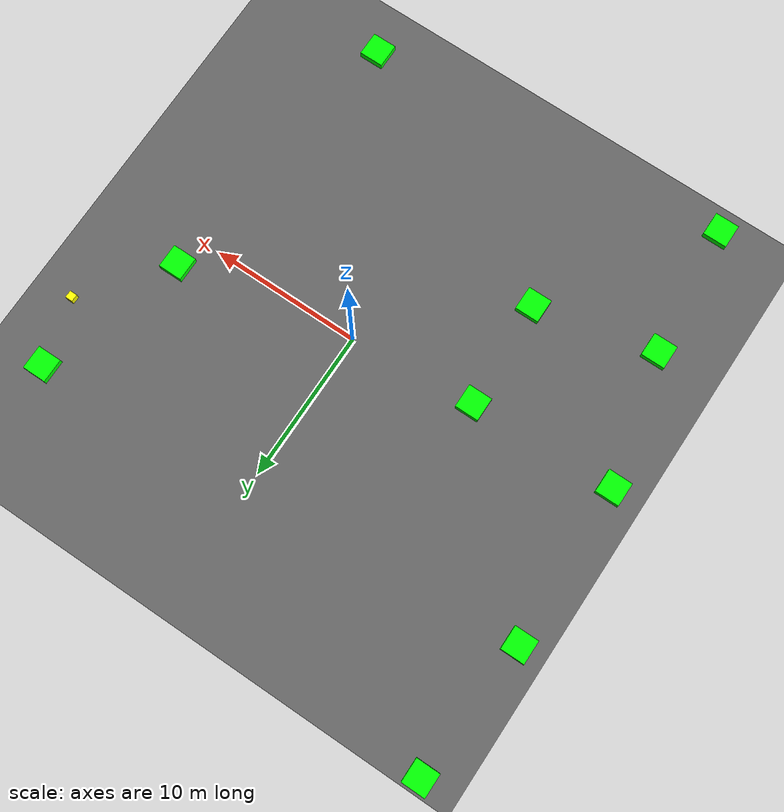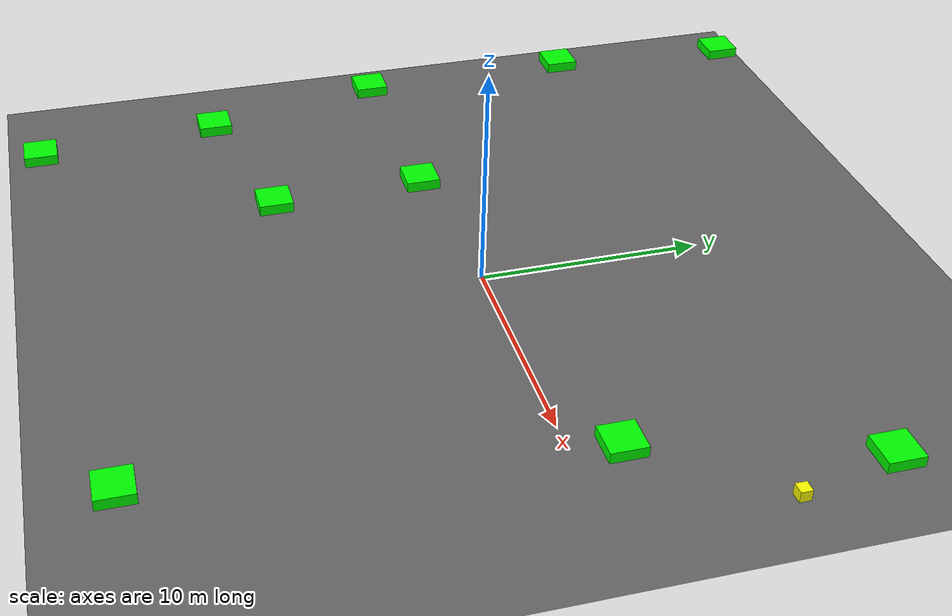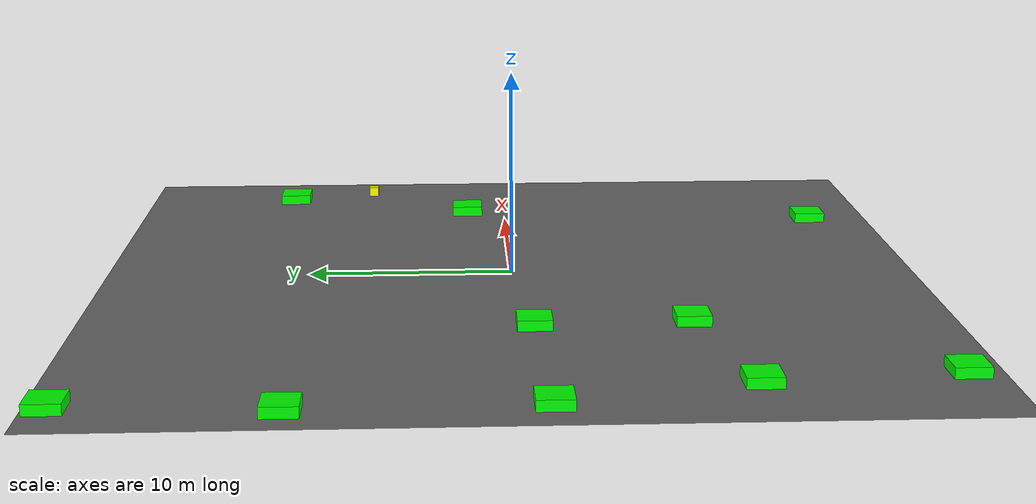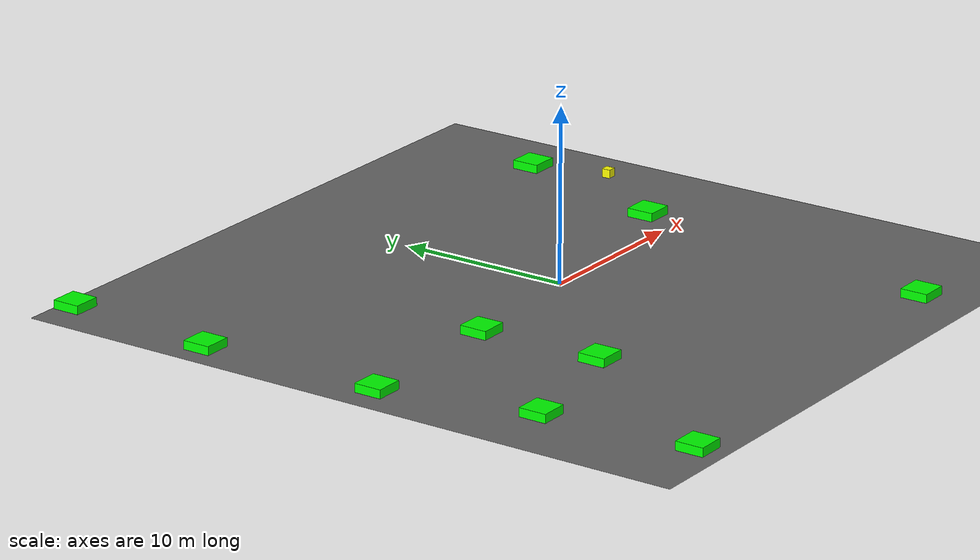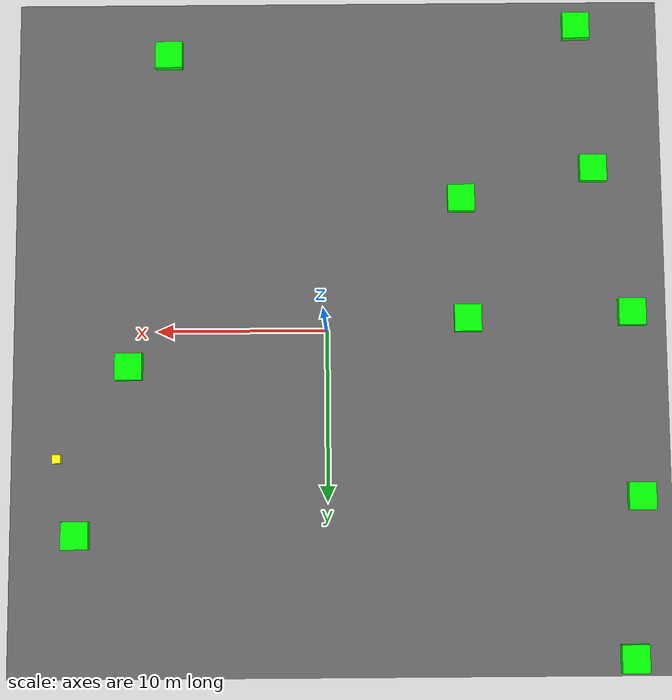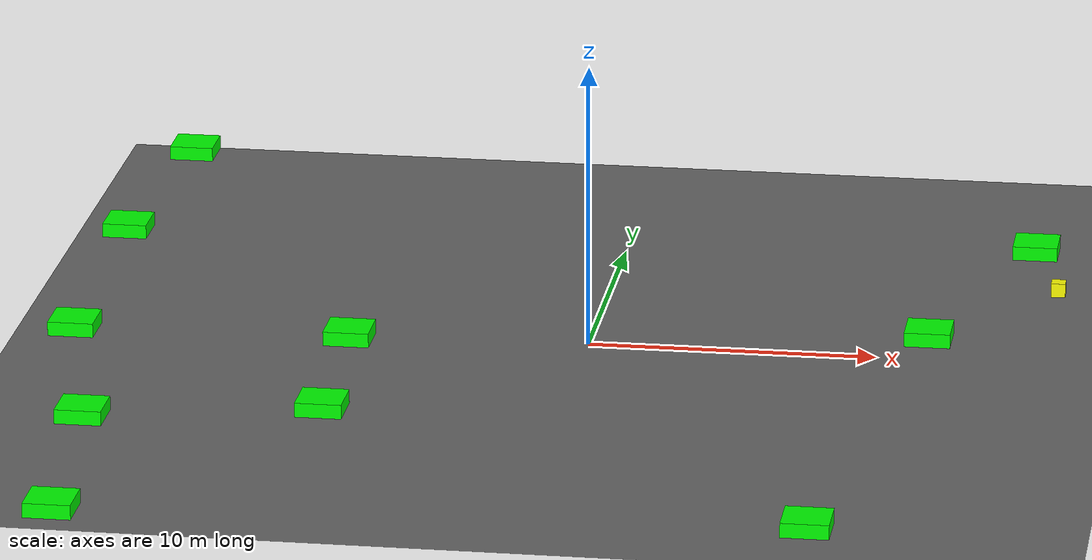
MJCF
<mujoco model="baseline_lvl5_obs10_seed4002">
    <compiler angle="degree" coordinate="local" inertiafromgeom="true"/>
    <option integrator="RK4" timestep="0.01"/>

    <asset>
        <texture builtin="gradient" height="100" rgb1="0.6 0.8 1" rgb2="0 0 0" type="skybox" width="100"/>
        <texture name="floor_texture" type="2d" builtin="checker" width="100" height="100" rgb1="0 0 0" rgb2="0.8 0.8 0.8"/>
        <material name="MatPlane" reflectance="0.5" shininess="1" specular="1" texrepeat="10 10" texture="floor_texture"/>
    </asset>

    <!-- Excluding the contact between the agent and the goal, and the agent and the floor -->
    <contact>
        <exclude body1="agent" body2="goal"/>
        <exclude body1 = "agent" body2 = "floor"/>
    </contact>

    <extension>
        <plugin plugin = "mujoco.pid">
            <instance name = "pid1">
                <config key="kp" value="2"/>
                <config key="ki" value="0"/>
                <config key="kd" value="55"/>
            </instance>
        </plugin>
    </extension>

    <worldbody>
        <light cutoff="100" diffuse="1 1 1" dir="-0 0 -1.3" directional="true" exponent="1" pos="0 0 1.3" specular=".1 .1 .1"/>
        <body name="floor" pos="0 0 0">
            <geom name="floor_geom" type="plane" size="20 20 0.1" material="MatPlane"/>
        </body>

        <!-- Goal -->
        <body name="goal" pos="12.000 -12.000 0">
            <geom name="goal_geom" type="plane" size="0.5 0.5 1" pos="0 0 0" rgba="1 0 0 1"/>
        </body>

        <!-- Agent -->
        <body name="agent" pos="15.753 7.423 0.25">
            <joint name="j1" type="slide" axis ="1 0 0 "/>
            <joint name="j2" type="slide" axis ="0 1 0 "/>
            <geom name="agent_geom" type="box" size="0.25 0.25 0.250" rgba="1 1 0 1"/>
        </body>

    <body name="obstacle1" pos="14.633 11.822 0.250">
      <geom name="obstacle1_geom" type="box"
            size="0.800 0.800 0.250"
            rgba="0 1 0 1"/>
    </body>
    <body name="obstacle2" pos="-18.219 9.769 0.250">
      <geom name="obstacle2_geom" type="box"
            size="0.800 0.800 0.250"
            rgba="0 1 0 1"/>
    </body>
    <body name="obstacle3" pos="9.429 -16.751 0.250">
      <geom name="obstacle3_geom" type="box"
            size="0.800 0.800 0.250"
            rgba="0 1 0 1"/>
    </body>
    <body name="obstacle4" pos="-8.293 -0.690 0.250">
      <geom name="obstacle4_geom" type="box"
            size="0.800 0.800 0.250"
            rgba="0 1 0 1"/>
    </body>
    <body name="obstacle5" pos="-17.538 19.004 0.250">
      <geom name="obstacle5_geom" type="box"
            size="0.800 0.800 0.250"
            rgba="0 1 0 1"/>
    </body>
    <body name="obstacle6" pos="-7.998 -7.877 0.250">
      <geom name="obstacle6_geom" type="box"
            size="0.800 0.800 0.250"
            rgba="0 1 0 1"/>
    </body>
    <body name="obstacle7" pos="-17.953 -0.994 0.250">
      <geom name="obstacle7_geom" type="box"
            size="0.800 0.800 0.250"
            rgba="0 1 0 1"/>
    </body>
    <body name="obstacle8" pos="11.645 2.050 0.250">
      <geom name="obstacle8_geom" type="box"
            size="0.800 0.800 0.250"
            rgba="0 1 0 1"/>
    </body>
    <body name="obstacle9" pos="-15.070 -18.417 0.250">
      <geom name="obstacle9_geom" type="box"
            size="0.800 0.800 0.250"
            rgba="0 1 0 1"/>
    </body>
    <body name="obstacle10" pos="-15.881 -9.650 0.250">
      <geom name="obstacle10_geom" type="box"
            size="0.800 0.800 0.250"
            rgba="0 1 0 1"/>
    </body>
    </worldbody>

    <actuator>
        <plugin joint="j1" plugin="mujoco.pid" instance="pid1" />
        <plugin joint="j2" plugin="mujoco.pid" instance="pid1"/>
    </actuator>

  <sensor>
    <distance name="dist1" geom1="agent_geom" geom2="obstacle1_geom" cutoff="1.5"/>
    <distance name="dist2" geom1="agent_geom" geom2="obstacle2_geom" cutoff="1.5"/>
    <distance name="dist3" geom1="agent_geom" geom2="obstacle3_geom" cutoff="1.5"/>
    <distance name="dist4" geom1="agent_geom" geom2="obstacle4_geom" cutoff="1.5"/>
    <distance name="dist5" geom1="agent_geom" geom2="obstacle5_geom" cutoff="1.5"/>
    <distance name="dist6" geom1="agent_geom" geom2="obstacle6_geom" cutoff="1.5"/>
    <distance name="dist7" geom1="agent_geom" geom2="obstacle7_geom" cutoff="1.5"/>
    <distance name="dist8" geom1="agent_geom" geom2="obstacle8_geom" cutoff="1.5"/>
    <distance name="dist9" geom1="agent_geom" geom2="obstacle9_geom" cutoff="1.5"/>
    <distance name="dist10" geom1="agent_geom" geom2="obstacle10_geom" cutoff="1.5"/>
  </sensor>
</mujoco>
